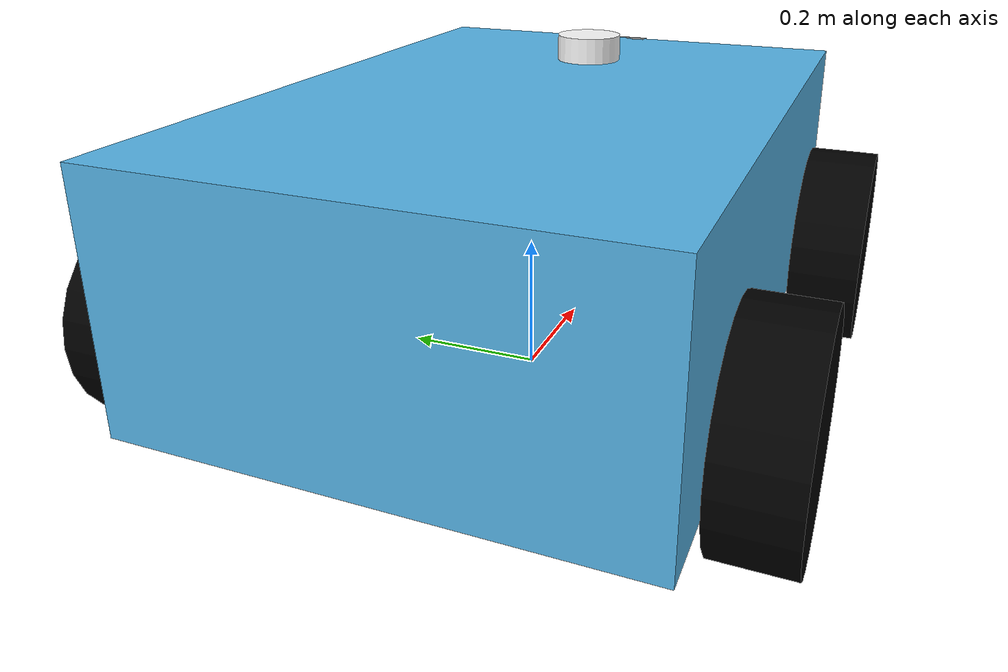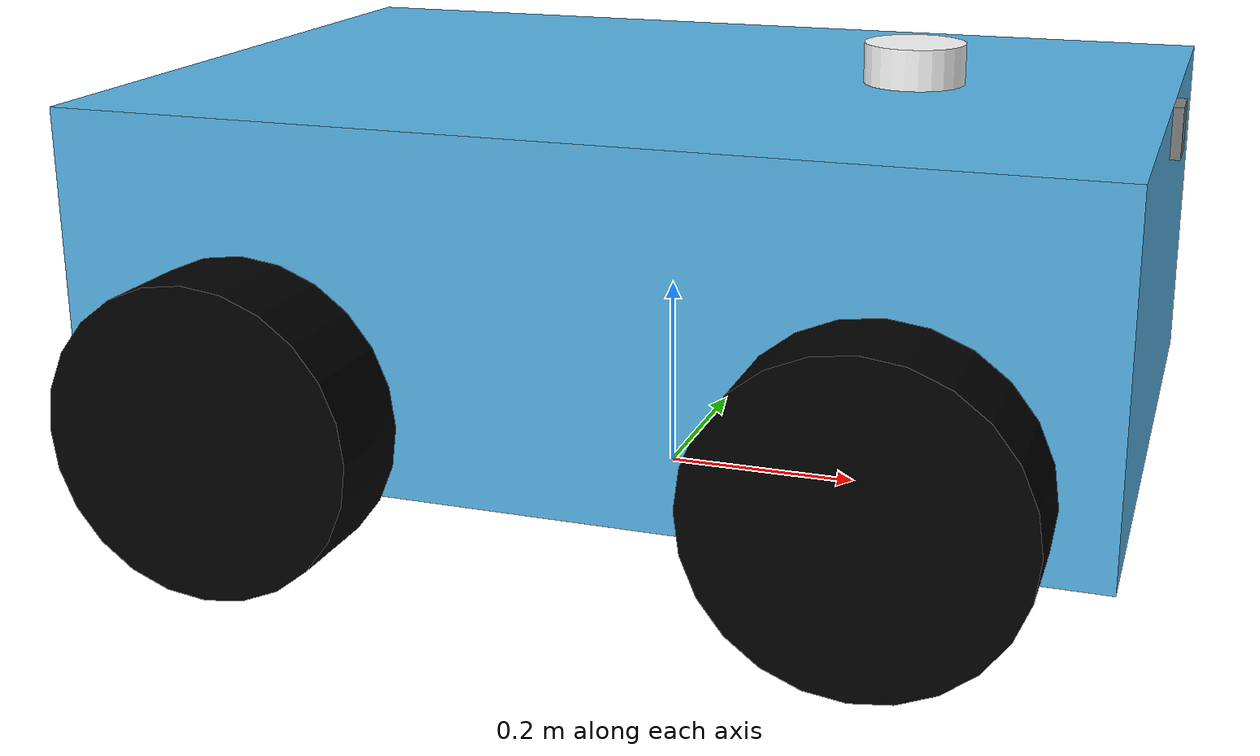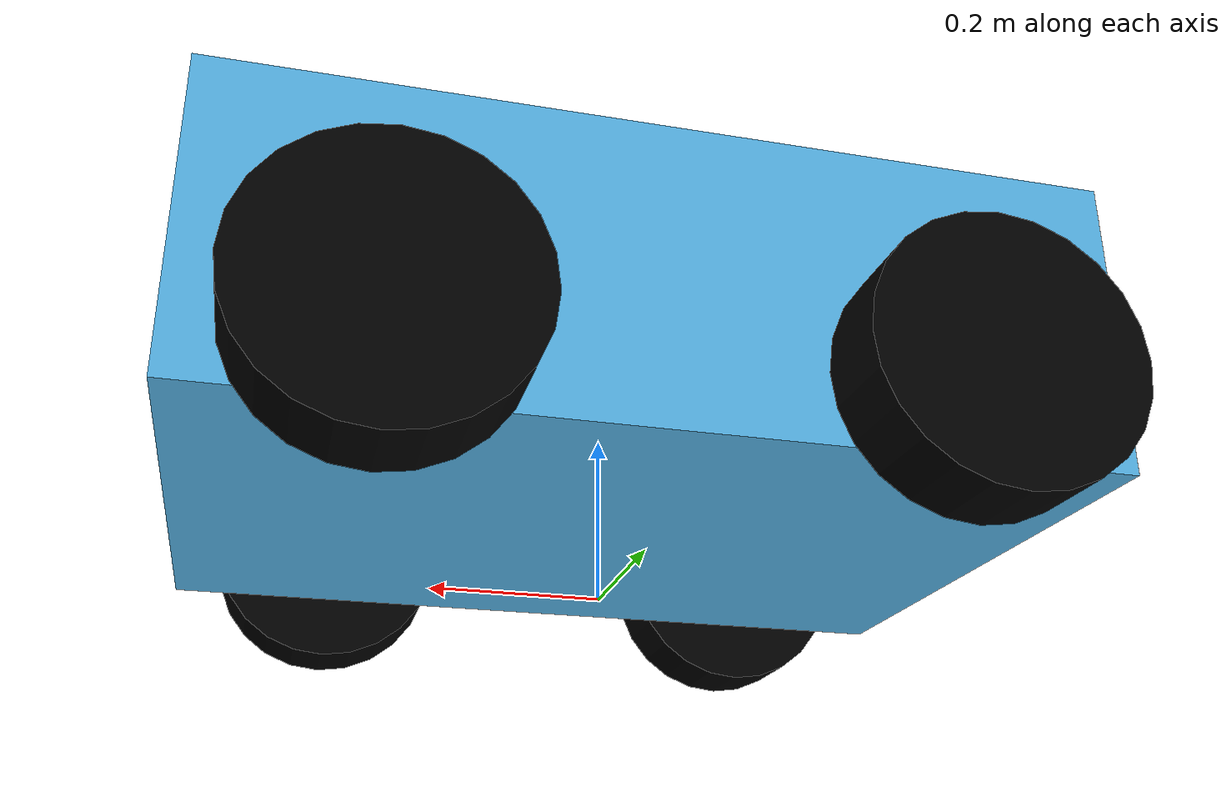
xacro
<?xml version="1.0"?>
<robot name="robot" xmlns:xacro="http://www.ros.org/wiki/xacro">
    <xacro:arg name="prefix" default="" />

    <xacro:include filename="rover.xacro"/>
    <xacro:include filename="gazebo_plugins.xacro"/>
    <xacro:include filename="lidar.xacro"/>
    <xacro:include filename="camera.xacro"/>

</robot>

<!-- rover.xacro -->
<robot xmlns:xacro="http://www.ros.org/wiki/xacro">

  <!-- Macro para inercia de cajas -->
  <xacro:macro name="box_inertia" params="m x y z o_xyz o_rpy">
    <inertial>
      <mass value="${m}"/>
      <origin xyz="${o_xyz}" rpy="${o_rpy}"/>
      <inertia
        ixx="${m/12.0*(y*y + z*z)}"
        ixy="0"
        ixz="0"
        iyy="${m/12.0*(x*x + z*z)}"
        iyz="0"
        izz="${m/12.0*(x*x + y*y)}"
      />
    </inertial>
  </xacro:macro>

  <!-- Parámetros -->
  <xacro:property name="wheel_radius" value="0.15"/>
  <xacro:property name="wheel_width" value="0.1"/>
  <xacro:property name="wheel_separation" value="0.41"/>
  <material name="black">
    <color rgba="0 0 0 1"/>
  </material>

  <material name="white">
    <color rgba="1 1 1 1"/>
  </material>

  <material name="gray">
    <color rgba="0.5 0.5 0.5 1"/>
  </material>

  <!-- BASES -->
  <link name="$(arg prefix)base_footprint"/>

  <joint name="$(arg prefix)base_link_joint" type="fixed">
    <parent link="$(arg prefix)base_footprint"/>
    <child link="$(arg prefix)base_link"/>
    <origin xyz="0 0 0" rpy="0 0 0"/>
  </joint>

  <link name="$(arg prefix)base_link">
    <visual>
      <origin xyz="0 0 0.25" rpy="0 0 0"/>
      <geometry>
        <box size="1 0.7 0.35"/>
      </geometry>
    </visual>
    <collision>
      <origin xyz="0 0 0.25"/>
      <geometry>
        <box size="1 0.7 0.35"/>
      </geometry>
    </collision>
    <inertial>
      <mass value="5.0"/>
      <inertia ixx="0.1" ixy="0.0" ixz="0.0"
               iyy="0.1" iyz="0.0"
               izz="0.1"/>
    </inertial>
  </link>

  <!-- RUEDAS -->
  <link name="$(arg prefix)left_front_wheel">
    <visual>
      <geometry>
        <cylinder radius="0.15" length="0.1"/>
      </geometry>
      <material name="black"/>
    </visual>

    <collision>
      <geometry>
        <cylinder radius="0.15" length="0.1"/>
      </geometry>
    </collision>

    <inertial>
      <mass value="0.5"/>
      <inertia ixx="0.001" ixy="0.0" ixz="0.0"
              iyy="0.001" iyz="0.0"
              izz="0.001"/>
    </inertial>
  </link>

  <link name="$(arg prefix)right_front_wheel">
    <visual>
      <geometry>
        <cylinder radius="0.15" length="0.1"/>
      </geometry>
      <material name="black"/>
    </visual>

    <collision>
      <geometry>
        <cylinder radius="0.15" length="0.1"/>
      </geometry>
    </collision>

    <inertial>
      <mass value="0.5"/>
      <inertia ixx="0.001" ixy="0.0" ixz="0.0"
              iyy="0.001" iyz="0.0"
              izz="0.001"/>
    </inertial>
  </link>

  <link name="$(arg prefix)left_rear_wheel">
    <visual>
      <geometry>
        <cylinder radius="0.15" length="0.1"/>
      </geometry>
      <material name="black"/>
    </visual>

    <collision>
      <geometry>
        <cylinder radius="0.15" length="0.1"/>
      </geometry>
    </collision>

    <inertial>
      <mass value="0.5"/>
      <inertia ixx="0.001" ixy="0.0" ixz="0.0"
              iyy="0.001" iyz="0.0"
              izz="0.001"/>
    </inertial>
  </link>

  <link name="$(arg prefix)right_rear_wheel">
    <visual>
      <geometry>
        <cylinder radius="0.15" length="0.1"/>
      </geometry>
      <material name="black"/>
    </visual>

    <collision>
      <geometry>
        <cylinder radius="0.15" length="0.1"/>
      </geometry>
    </collision>

    <inertial>
      <mass value="0.5"/>
      <inertia ixx="0.001" ixy="0.0" ixz="0.0"
              iyy="0.001" iyz="0.0"
              izz="0.001"/>
    </inertial>
  </link>

  <joint name="$(arg prefix)left_front_wheel_joint" type="continuous">
    <parent link="$(arg prefix)base_link"/>
    <child link="$(arg prefix)left_front_wheel"/>
    <origin xyz="0.3 ${wheel_separation} 0.15" rpy="-1.57 0 0"/>
    <axis xyz="0 0 1"/>
  </joint>

  <joint name="$(arg prefix)right_front_wheel_joint" type="continuous">
    <parent link="$(arg prefix)base_link"/>
    <child link="$(arg prefix)right_front_wheel"/>
    <origin xyz="0.3 -${wheel_separation} 0.15" rpy="-1.57 0 0"/>
    <axis xyz="0 0 1"/>
  </joint>

  <joint name="$(arg prefix)left_rear_wheel_joint" type="continuous">
    <parent link="$(arg prefix)base_link"/>
    <child link="$(arg prefix)left_rear_wheel"/>
    <origin xyz="-0.3 ${wheel_separation} 0.15" rpy="-1.57 0 0"/>
    <axis xyz="0 0 1"/>
  </joint>

  <joint name="$(arg prefix)right_rear_wheel_joint" type="continuous">
    <parent link="$(arg prefix)base_link"/>
    <child link="$(arg prefix)right_rear_wheel"/>
    <origin xyz="-0.3 -${wheel_separation} 0.15" rpy="-1.57 0 0"/>
    <axis xyz="0 0 1"/>
  </joint>

  <gazebo reference="$(arg prefix)left_front_wheel">
    <mu1>0.2</mu1>
    <mu2>0.2</mu2>
    <kp>1000000.0</kp>
    <kd>1.0</kd>
  </gazebo>

  <gazebo reference="$(arg prefix)right_front_wheel">
    <mu1>0.2</mu1>
    <mu2>0.2</mu2>
    <kp>1000000.0</kp>
    <kd>1.0</kd>
  </gazebo>

  <gazebo reference="$(arg prefix)left_rear_wheel">
    <mu1>0.2</mu1>
    <mu2>0.2</mu2>
    <kp>1000000.0</kp>
    <kd>1.0</kd>
  </gazebo>

  <gazebo reference="$(arg prefix)right_rear_wheel">
    <mu1>0.2</mu1>
    <mu2>0.2</mu2>
    <kp>1000000.0</kp>
    <kd>1.0</kd>
  </gazebo>

</robot>

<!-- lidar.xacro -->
<robot xmlns:xacro="http://www.ros.org/wiki/xacro">

  <xacro:property name="lidar_radius" value="0.05"/>
  <xacro:property name="lidar_length" value="0.04"/>

      <joint name="$(arg prefix)laser_joint" type="fixed"> <parent link="$(arg prefix)base_link"/>
        <child link="$(arg prefix)lidar_link"/> <origin xyz="0.25 0 0.45" rpy="0 0 0"/>
      </joint>

      <link name="$(arg prefix)lidar_link">
        <visual>
          <origin xyz="0 0 0" rpy="0 0 0"/>
          <geometry>
            <cylinder radius="${lidar_radius}" length="${lidar_length}"/>
          </geometry>
          <material name="white"/>
        </visual>
        <collision>
          <origin xyz="0 0 0" rpy="0 0 0"/>
          <geometry>
            <cylinder radius="${lidar_radius}" length="${lidar_length}"/>
          </geometry>
        </collision>
      </link>

      <gazebo reference="$(arg prefix)lidar_link">
        <sensor name="lidar_sensor" type="gpu_lidar">

          <gz_frame_id>$(arg prefix)lidar_link</gz_frame_id>
          <update_rate>10</update_rate>

          <topic>$(arg prefix)scan</topic>

          <ray>
            <scan>
              <horizontal>
                <samples>720</samples>
                <resolution>1</resolution>
                <min_angle>-1.5708</min_angle>
                <max_angle>1.5708</max_angle>
              </horizontal>
            </scan>

            <range>
              <min>0.12</min>
              <max>10.0</max>
              <resolution>0.01</resolution>
            </range>
          </ray>

          <visualize>true</visualize>

        </sensor>
      </gazebo>

</robot>

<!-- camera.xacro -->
<robot xmlns:xacro="http://www.ros.org/wiki/xacro">

  <!--Altura del LiDAR con respecto a base_link-->
  <xacro:property name="camera_height" value="0.4"/>

  <!--link que representa el cuerpo físico del sensor-->
  <link name="$(arg prefix)camera_link">
    <visual>
      <geometry>
        <box size="0.02 0.05 0.05"/>
      </geometry>
      <material name="gray"/>
    </visual>
    <collision>
      <geometry>
        <box size="0.02 0.05 0.05"/>
      </geometry>
    </collision>

    <!--Propiedades inerciales requeridas para la simulación-->
    <inertial>
      <mass value="0.3"/>
      <origin xyz="0 0 0"/>
      <inertia ixx="0.0005" ixy="0" ixz="0" iyy="0.0005" iyz="0" izz="0.0005"/>
    </inertial>
  </link>
  <!--Articulación uniendo la camara a la base del robot-->
  <joint name="$(arg prefix)camera_joint" type="fixed">
    <parent link="$(arg prefix)base_link"/>
    <child link="$(arg prefix)camera_link"/>
    <origin xyz="0.5 0 ${camera_height}" rpy="0 0 0"/>
  </joint>

  <!--Referencia para Gazebo-->
  <gazebo reference="$(arg prefix)camera_link">
    <sensor name="camera_sensor" type="camera">
      <update_rate>30</update_rate>

      <topic>$(arg prefix)camera/image_raw</topic>

      <gz_frame_id>$(arg prefix)camera_link</gz_frame_id>

      <camera>
        <horizontal_fov>1.047</horizontal_fov>
        <image>
          <width>640</width>
          <height>480</height>
          <format>R8G8B8</format>
        </image>
        <clip>
          <near>0.1</near>
          <far>100</far>
        </clip>
      </camera>
    </sensor>
  </gazebo>

</robot>
